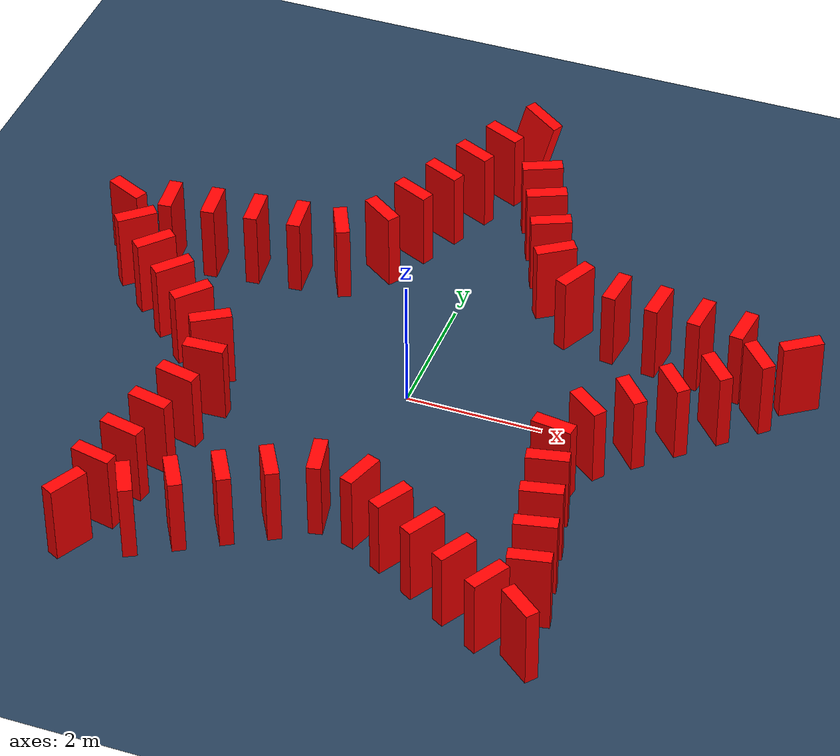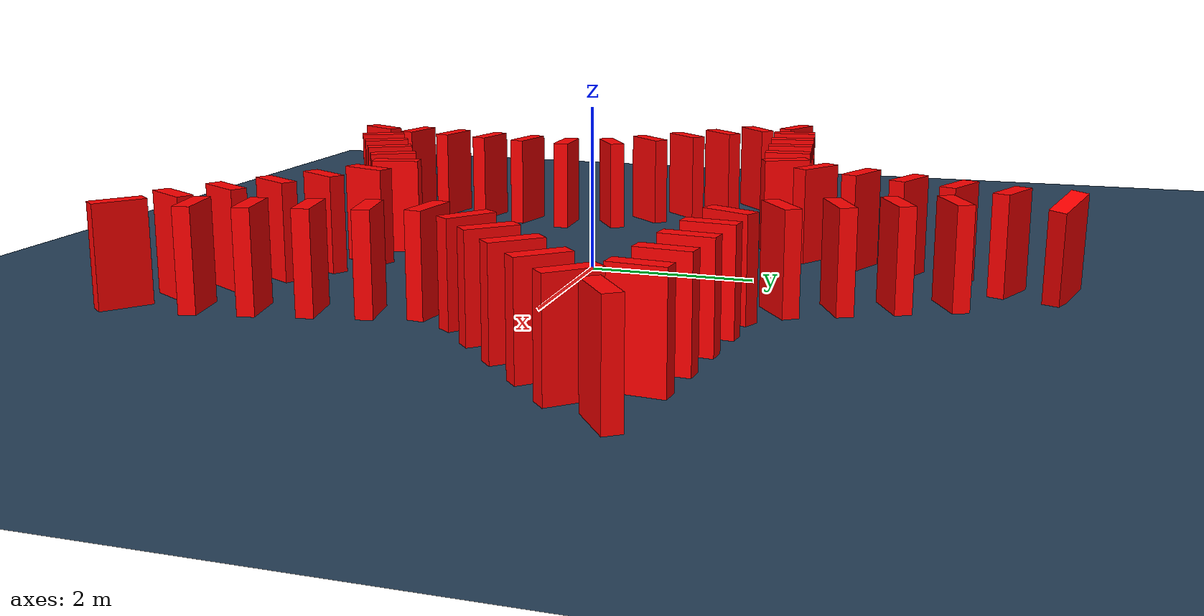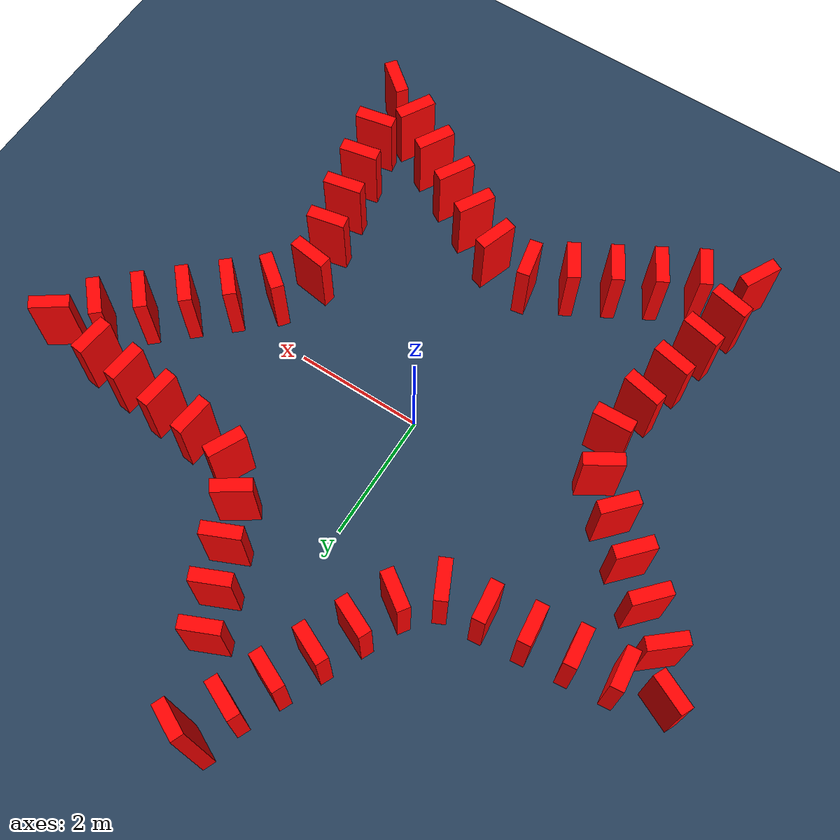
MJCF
<mujoco>
  <visual>
    <headlight diffuse="0.6 0.6 0.6" ambient="0.1 0.1 0.1" specular="0 0 0"/>
    <rgba haze="0.15 0.25 0.35 1"/>
    <global azimuth="120" elevation="-20"/>
  </visual>
  <asset>
    <texture type="skybox" builtin="gradient" rgb1="0.3 0.5 0.7" rgb2="0 0 0" width="512" height="3072"/>
    <texture type="2d" name="groundplane" builtin="checker" mark="edge" rgb1="0.2 0.3 0.4" rgb2="0.1 0.2 0.3" markrgb="0.8 0.8 0.8" width="300" height="300"/>
    <material name="groundplane" texture="groundplane" texuniform="true" texrepeat="5 5" reflectance="0.2"/>
  </asset>
  <worldbody>
    <light pos="0 0 1.5" dir="0 0 -1" directional="true"/>
    <geom name="floor" size="0 0 0.05" type="plane" material="groundplane"/>
    <body pos="0.0000 5.5000 0.6000" euler="0 15.0 -114.2">
      <geom type="box" size="0.1000 0.3000 0.6000" rgba="1.000 0.000 0.000 1"/>
      <freejoint/>
    </body>
    <body pos="-0.2668 4.9071 0.6000" euler="0 0.0 -114.2">
      <geom type="box" size="0.1000 0.3000 0.6000" rgba="1.000 0.000 0.000 1"/>
      <freejoint/>
    </body>
    <body pos="-0.5335 4.3143 0.6000" euler="0 0.0 -114.2">
      <geom type="box" size="0.1000 0.3000 0.6000" rgba="1.000 0.000 0.000 1"/>
      <freejoint/>
    </body>
    <body pos="-0.8003 3.7214 0.6000" euler="0 0.0 -114.2">
      <geom type="box" size="0.1000 0.3000 0.6000" rgba="1.000 0.000 0.000 1"/>
      <freejoint/>
    </body>
    <body pos="-1.0670 3.1285 0.6000" euler="0 0.0 -114.2">
      <geom type="box" size="0.1000 0.3000 0.6000" rgba="1.000 0.000 0.000 1"/>
      <freejoint/>
    </body>
    <body pos="-1.3338 2.5356 0.6000" euler="0 0.0 -124.5">
      <geom type="box" size="0.1000 0.3000 0.6000" rgba="1.000 0.000 0.000 1"/>
      <freejoint/>
    </body>
    <body pos="-1.7921 2.0747 0.6000" euler="0 0.0 -154.3">
      <geom type="box" size="0.1000 0.3000 0.6000" rgba="1.000 0.000 0.000 1"/>
      <freejoint/>
    </body>
    <body pos="-2.4384 2.0042 0.6000" euler="0 0.0 -173.8">
      <geom type="box" size="0.1000 0.3000 0.6000" rgba="1.000 0.000 0.000 1"/>
      <freejoint/>
    </body>
    <body pos="-3.0846 1.9337 0.6000" euler="0 0.0 -173.8">
      <geom type="box" size="0.1000 0.3000 0.6000" rgba="1.000 0.000 0.000 1"/>
      <freejoint/>
    </body>
    <body pos="-3.7309 1.8632 0.6000" euler="0 0.0 -173.8">
      <geom type="box" size="0.1000 0.3000 0.6000" rgba="1.000 0.000 0.000 1"/>
      <freejoint/>
    </body>
    <body pos="-4.3772 1.7927 0.6000" euler="0 0.0 -173.8">
      <geom type="box" size="0.1000 0.3000 0.6000" rgba="1.000 0.000 0.000 1"/>
      <freejoint/>
    </body>
    <body pos="-5.0235 1.7222 0.6000" euler="0 0.0 -115.0">
      <geom type="box" size="0.1000 0.3000 0.6000" rgba="1.000 0.000 0.000 1"/>
      <freejoint/>
    </body>
    <body pos="-4.6611 1.1826 0.6000" euler="0 0.0 -49.2">
      <geom type="box" size="0.1000 0.3000 0.6000" rgba="1.000 0.000 0.000 1"/>
      <freejoint/>
    </body>
    <body pos="-4.1797 0.7457 0.6000" euler="0 0.0 -42.2">
      <geom type="box" size="0.1000 0.3000 0.6000" rgba="1.000 0.000 0.000 1"/>
      <freejoint/>
    </body>
    <body pos="-3.6983 0.3087 0.6000" euler="0 0.0 -42.2">
      <geom type="box" size="0.1000 0.3000 0.6000" rgba="1.000 0.000 0.000 1"/>
      <freejoint/>
    </body>
    <body pos="-3.2168 -0.1282 0.6000" euler="0 0.0 -42.2">
      <geom type="box" size="0.1000 0.3000 0.6000" rgba="1.000 0.000 0.000 1"/>
      <freejoint/>
    </body>
    <body pos="-2.7354 -0.5651 0.6000" euler="0 0.0 -58.0">
      <geom type="box" size="0.1000 0.3000 0.6000" rgba="1.000 0.000 0.000 1"/>
      <freejoint/>
    </body>
    <body pos="-2.5531 -1.1891 0.6000" euler="0 0.0 -87.7">
      <geom type="box" size="0.1000 0.3000 0.6000" rgba="1.000 0.001 0.000 1"/>
      <freejoint/>
    </body>
    <body pos="-2.6858 -1.8255 0.6000" euler="0 0.0 -101.8">
      <geom type="box" size="0.1000 0.3000 0.6000" rgba="1.000 0.001 0.000 1"/>
      <freejoint/>
    </body>
    <body pos="-2.8185 -2.4620 0.6000" euler="0 0.0 -101.8">
      <geom type="box" size="0.1000 0.3000 0.6000" rgba="1.000 0.001 0.000 1"/>
      <freejoint/>
    </body>
    <body pos="-2.9512 -3.0984 0.6000" euler="0 0.0 -101.8">
      <geom type="box" size="0.1000 0.3000 0.6000" rgba="1.000 0.001 0.000 1"/>
      <freejoint/>
    </body>
    <body pos="-3.0838 -3.7348 0.6000" euler="0 0.0 -101.8">
      <geom type="box" size="0.1000 0.3000 0.6000" rgba="1.000 0.001 0.000 1"/>
      <freejoint/>
    </body>
    <body pos="-3.2165 -4.3713 0.6000" euler="0 0.0 -27.4">
      <geom type="box" size="0.1000 0.3000 0.6000" rgba="1.000 0.001 0.000 1"/>
      <freejoint/>
    </body>
    <body pos="-2.5068 -4.0342 0.6000" euler="0 0.0 27.4">
      <geom type="box" size="0.1000 0.3000 0.6000" rgba="1.000 0.001 0.000 1"/>
      <freejoint/>
    </body>
    <body pos="-1.9425 -3.7114 0.6000" euler="0 0.0 29.8">
      <geom type="box" size="0.1000 0.3000 0.6000" rgba="1.000 0.001 0.000 1"/>
      <freejoint/>
    </body>
    <body pos="-1.3782 -3.3885 0.6000" euler="0 0.0 29.8">
      <geom type="box" size="0.1000 0.3000 0.6000" rgba="1.000 0.001 0.000 1"/>
      <freejoint/>
    </body>
    <body pos="-0.8139 -3.0657 0.6000" euler="0 0.0 29.8">
      <geom type="box" size="0.1000 0.3000 0.6000" rgba="1.000 0.001 0.000 1"/>
      <freejoint/>
    </body>
    <body pos="-0.2497 -2.7428 0.6000" euler="0 0.0 11.2">
      <geom type="box" size="0.1000 0.3000 0.6000" rgba="1.000 0.001 0.000 1"/>
      <freejoint/>
    </body>
    <body pos="0.3951 -2.8261 0.6000" euler="0 0.0 -18.6">
      <geom type="box" size="0.1000 0.3000 0.6000" rgba="1.000 0.001 0.000 1"/>
      <freejoint/>
    </body>
    <body pos="0.9594 -3.1489 0.6000" euler="0 0.0 -29.8">
      <geom type="box" size="0.1000 0.3000 0.6000" rgba="1.000 0.001 0.000 1"/>
      <freejoint/>
    </body>
    <body pos="1.5237 -3.4718 0.6000" euler="0 0.0 -29.8">
      <geom type="box" size="0.1000 0.3000 0.6000" rgba="1.000 0.001 0.000 1"/>
      <freejoint/>
    </body>
    <body pos="2.0880 -3.7946 0.6000" euler="0 0.0 -29.8">
      <geom type="box" size="0.1000 0.3000 0.6000" rgba="1.000 0.001 0.000 1"/>
      <freejoint/>
    </body>
    <body pos="2.6523 -4.1175 0.6000" euler="0 0.0 -29.8">
      <geom type="box" size="0.1000 0.3000 0.6000" rgba="1.000 0.001 0.000 1"/>
      <freejoint/>
    </body>
    <body pos="3.2166 -4.4403 0.6000" euler="0 0.0 51.4">
      <geom type="box" size="0.1000 0.3000 0.6000" rgba="1.000 0.001 0.000 1"/>
      <freejoint/>
    </body>
    <body pos="3.0576 -3.6092 0.6000" euler="0 0.0 101.2">
      <geom type="box" size="0.1000 0.3000 0.6000" rgba="1.000 0.001 0.000 1"/>
      <freejoint/>
    </body>
    <body pos="2.9250 -2.9728 0.6000" euler="0 0.0 101.8">
      <geom type="box" size="0.1000 0.3000 0.6000" rgba="1.000 0.001 0.000 1"/>
      <freejoint/>
    </body>
    <body pos="2.7923 -2.3363 0.6000" euler="0 0.0 101.8">
      <geom type="box" size="0.1000 0.3000 0.6000" rgba="1.000 0.001 0.000 1"/>
      <freejoint/>
    </body>
    <body pos="2.6596 -1.6999 0.6000" euler="0 0.0 101.8">
      <geom type="box" size="0.1000 0.3000 0.6000" rgba="1.000 0.001 0.000 1"/>
      <freejoint/>
    </body>
    <body pos="2.5270 -1.0635 0.6000" euler="0 0.0 82.3">
      <geom type="box" size="0.1000 0.3000 0.6000" rgba="1.000 0.001 0.000 1"/>
      <freejoint/>
    </body>
    <body pos="2.8237 -0.4850 0.6000" euler="0 0.0 52.5">
      <geom type="box" size="0.1000 0.3000 0.6000" rgba="1.000 0.001 0.000 1"/>
      <freejoint/>
    </body>
    <body pos="3.3051 -0.0481 0.6000" euler="0 0.0 42.2">
      <geom type="box" size="0.1000 0.3000 0.6000" rgba="1.000 0.001 0.000 1"/>
      <freejoint/>
    </body>
    <body pos="3.7865 0.3888 0.6000" euler="0 0.0 42.2">
      <geom type="box" size="0.1000 0.3000 0.6000" rgba="1.000 0.001 0.000 1"/>
      <freejoint/>
    </body>
    <body pos="4.2679 0.8258 0.6000" euler="0 0.0 42.2">
      <geom type="box" size="0.1000 0.3000 0.6000" rgba="1.000 0.001 0.000 1"/>
      <freejoint/>
    </body>
    <body pos="4.7494 1.2627 0.6000" euler="0 0.0 42.2">
      <geom type="box" size="0.1000 0.3000 0.6000" rgba="1.000 0.001 0.000 1"/>
      <freejoint/>
    </body>
    <body pos="5.2308 1.6996 0.6000" euler="0 0.0 125.3">
      <geom type="box" size="0.1000 0.3000 0.6000" rgba="1.000 0.001 0.000 1"/>
      <freejoint/>
    </body>
    <body pos="4.3735 1.7931 0.6000" euler="0 0.0 173.8">
      <geom type="box" size="0.1000 0.3000 0.6000" rgba="1.000 0.001 0.000 1"/>
      <freejoint/>
    </body>
    <body pos="3.7272 1.8636 0.6000" euler="0 0.0 173.8">
      <geom type="box" size="0.1000 0.3000 0.6000" rgba="1.000 0.001 0.000 1"/>
      <freejoint/>
    </body>
    <body pos="3.0809 1.9341 0.6000" euler="0 0.0 173.8">
      <geom type="box" size="0.1000 0.3000 0.6000" rgba="1.000 0.001 0.000 1"/>
      <freejoint/>
    </body>
    <body pos="2.4347 2.0046 0.6000" euler="0 0.0 173.8">
      <geom type="box" size="0.1000 0.3000 0.6000" rgba="1.000 0.001 0.000 1"/>
      <freejoint/>
    </body>
    <body pos="1.7884 2.0751 0.6000" euler="0 0.0 154.2">
      <geom type="box" size="0.1000 0.3000 0.6000" rgba="1.000 0.001 0.000 1"/>
      <freejoint/>
    </body>
    <body pos="1.3325 2.5385 0.6000" euler="0 0.0 124.4">
      <geom type="box" size="0.1000 0.3000 0.6000" rgba="1.000 0.001 0.000 1"/>
      <freejoint/>
    </body>
    <body pos="1.0657 3.1314 0.6000" euler="0 0.0 114.2">
      <geom type="box" size="0.1000 0.3000 0.6000" rgba="1.000 0.002 0.000 1"/>
      <freejoint/>
    </body>
    <body pos="0.7990 3.7243 0.6000" euler="0 0.0 114.2">
      <geom type="box" size="0.1000 0.3000 0.6000" rgba="1.000 0.002 0.000 1"/>
      <freejoint/>
    </body>
    <body pos="0.5322 4.3171 0.6000" euler="0 0.0 114.2">
      <geom type="box" size="0.1000 0.3000 0.6000" rgba="1.000 0.002 0.000 1"/>
      <freejoint/>
    </body>
  </worldbody>
</mujoco>
